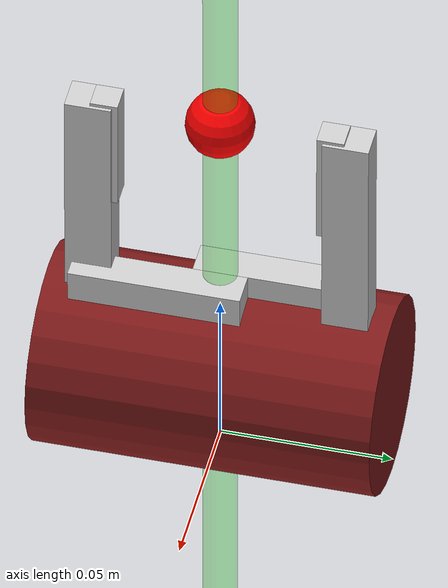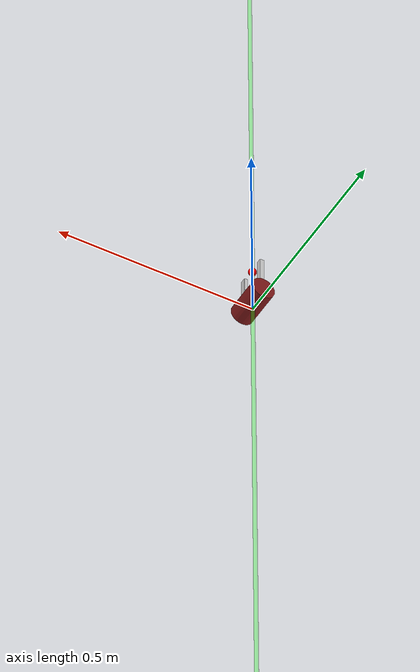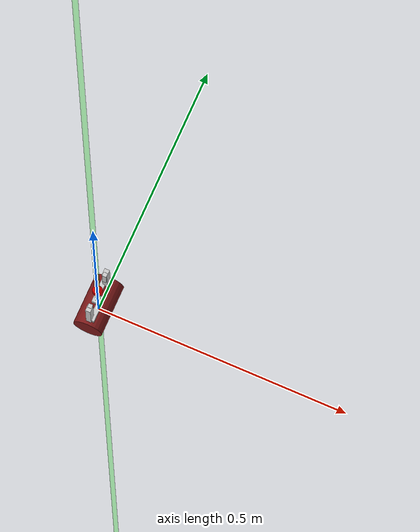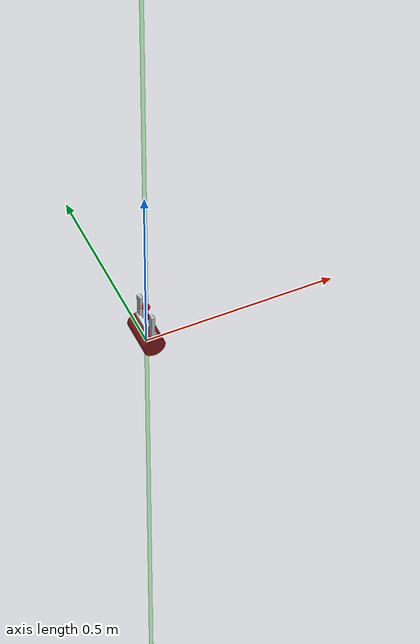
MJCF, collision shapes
<mujoco model="base">
    <asset>
        <mesh name="electric_gripper_base" file="meshes/two_finger_gripper/electric_gripper_base.STL" />
        <mesh name="standard_narrow" file="meshes/two_finger_gripper/standard_narrow.STL" />
        <mesh name="half_round_tip" file="meshes/two_finger_gripper/half_round_tip.STL" />

        <texture type="cube" name="gripper_finger_tex" builtin="flat" width="32" height="192" />
        <texture type="cube" name="gripper_tex" builtin="flat" width="32" height="192" />
        <texture type="cube" name="base_tex" builtin="flat" width="32" height="192" />

        <material name="gripper_finger_mat" texture="gripper_finger_tex" />
        <material name="gripper_mat" texture="gripper_tex" />
        <material name="base_mat" texture="base_tex" />

    </asset>
    <actuator>
        <position ctrllimited="true" ctrlrange="-0.0115 0.020833" joint="r_gripper_r_finger_joint" kp="10000" name="gripper_r_gripper_r_finger_joint" forcelimited="true" forcerange="-20 20"/>
        <position ctrllimited="true" ctrlrange="-0.020833 0.0115" joint="r_gripper_l_finger_joint" kp="10000" name="gripper_r_gripper_l_finger_joint" forcelimited="true" forcerange="-20 20"/>
    </actuator>

    <worldbody>
        <inertial pos="1e-08 1e-08 1e-08" quat="0.820473 0.339851 -0.17592 0.424708" mass="1e-08" diaginertia="1e-08 1e-08 1e-08" />
        <geom name="base" material="base_mat" size="1e-08 5e-09" type="cylinder" />
        <body name="right_gripper_base" pos="0 0 0.025">
            <inertial pos="0 0 0" quat="-0.5 0.5 0.5 0.5" mass="0.3" diaginertia="3e-08 2e-08 2e-08" />
            <geom name="right_gripper_base1" rgba="0.5 0.1 0.1 1" material="gripper_mat" quat="0 0 0.707107 0.707107" type="mesh" contype="0" conaffinity="0" group="1" mesh="electric_gripper_base" />
            <geom name="right_gripper_base2" rgba="0.5 0.1 0.1 1" material="gripper_mat" size="0.029 0.05" quat="0 0 0.707107 0.707107" type="cylinder" />
            <body name="right_gripper" pos="0 0 0.095">
                <inertial pos="0 0 0" mass="0.0001" diaginertia="0 0 0" />
                <!-- This site was added for visualization. -->
                <site name="grip_site" pos="0 0 0" size="0.01 0.01 0.01" rgba="1 0 0 1" type="sphere" group="1"></site>
                <!-- This site was added for visualization. -->
                <site name="grip_site_cylinder" pos="0 0 0" size="0.005 10" rgba="0 1 0 0.3" type="cylinder" group="1"></site>
                <!-- This camera points out of the gripper. -->
                <camera mode="fixed" name="eye_in_hand" pos="0 0 0" quat="0 -1 1 0" fovy="75"/>
            </body>
            <!--TODO: Gripper seems narrow enough but cant grab cube-->
            <body name="r_gripper_l_finger" pos="0 0.02 0.02">
                <inertial pos="0 0 0" quat="0 0 0 -1" mass="0.02" diaginertia="0.01 0.01 0.01" />
                <joint name="r_gripper_l_finger_joint" pos="0 0 0" axis="0 1 0" type="slide" limited="true" range="-0.0115 0.020833" damping="100"/>
                <geom  name="r_gripper_l_finger" material="gripper_finger_mat" quat="0 0 0 -1" type="mesh" contype="0" conaffinity="0" group="1" mesh="standard_narrow" />
                <geom  name="l_finger_g0" material="gripper_finger_mat" size="0.005 0.00675 0.0375" pos="0 0.01725 0.04" quat="0 0 0 -1" type="box" conaffinity="1" contype="0" friction="0 0 0"/>
                <geom  name="l_finger_g1" material="gripper_finger_mat" size="0.005 0.025 0.0085" pos="-0.005 -0.003 0.0083" quat="0 0 0 -1" type="box" conaffinity="1" contype="0" friction="0 0 0"/>

                <body name="r_gripper_l_finger_tip" pos="0 0.01725 0.075">
                    <inertial pos="0 0 0" quat="0 0 0 1" mass="0.01" diaginertia="0.01 0.01 0.01" />
                    <geom name="l_fingertip_g0" material="gripper_finger_mat" quat="0 0 0 1" type="mesh" contype="0" conaffinity="0" group="1" mesh="half_round_tip" />
                    <geom name="l_fingertip_g1" material="gripper_finger_mat" size="0.004 0.004 0.0185" pos="0 -0.0045 -0.015" quat="0 0 0 1" type="box"  conaffinity="1" contype="0" friction="0 0 0"/>
                </body>
            </body>
            <body name="r_gripper_r_finger" pos="0 -0.02 0.02">
                <inertial pos="0 0 0" mass="0.02" diaginertia="0.01 0.01 0.01" />
                <joint name="r_gripper_r_finger_joint" pos="0 0 0" axis="0 1 0" type="slide" limited="true" range="-0.020833 0.0115" damping="100"/>
                <geom name="r_gripper_r_finger" material="gripper_finger_mat" type="mesh" contype="0" conaffinity="0" group="1" mesh="standard_narrow" />
                <geom name="r_finger_g0" material="gripper_finger_mat" size="0.005 0.00675 0.0375" pos="0 -0.01725 0.04" type="box" conaffinity="1" contype="0" friction="0 0 0"/>
                <geom name="r_finger_g1" material="gripper_finger_mat" size="0.005 0.025 0.0085" pos="0.005 0.003 0.0083" type="box" conaffinity="1" contype="0" friction="0 0 0"/>
                <body name="r_gripper_r_finger_tip" pos="0 -0.01725 0.075">
                    <inertial pos="0 0 0" mass="0.01" diaginertia="0.01 0.01 0.01" />
                    <geom name="r_fingertip_g0" material="gripper_finger_mat" type="mesh" contype="0" conaffinity="0" group="1" mesh="half_round_tip" />
                    <geom name="r_fingertip_g1" material="gripper_finger_mat" size="0.004 0.004 0.0185" pos="0 0.0045 -0.015" type="box"  conaffinity="1" contype="0" friction="0 0 0"/>
                </body>
            </body>
        </body>
    </worldbody>
</mujoco>
